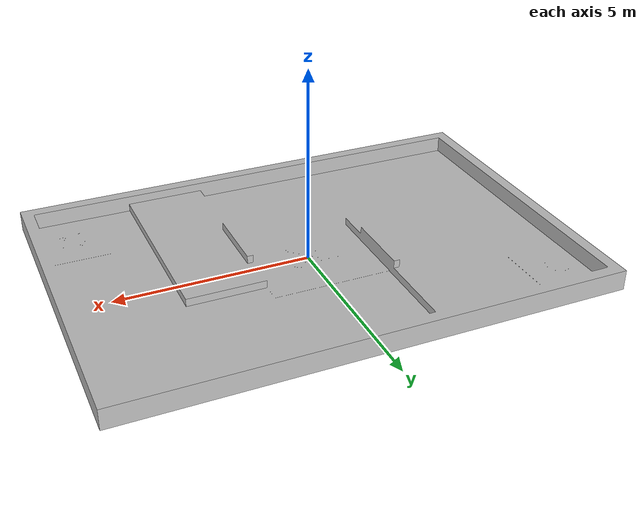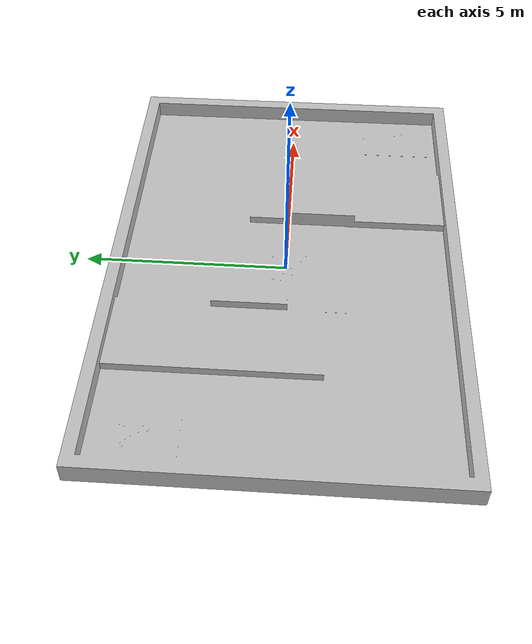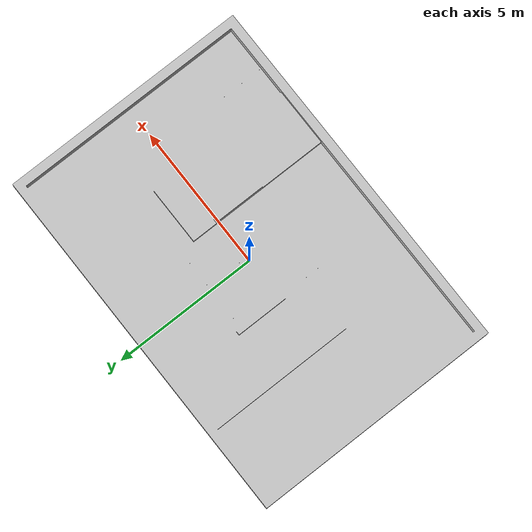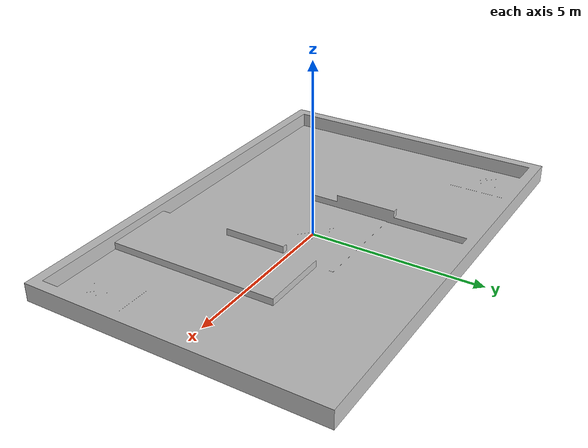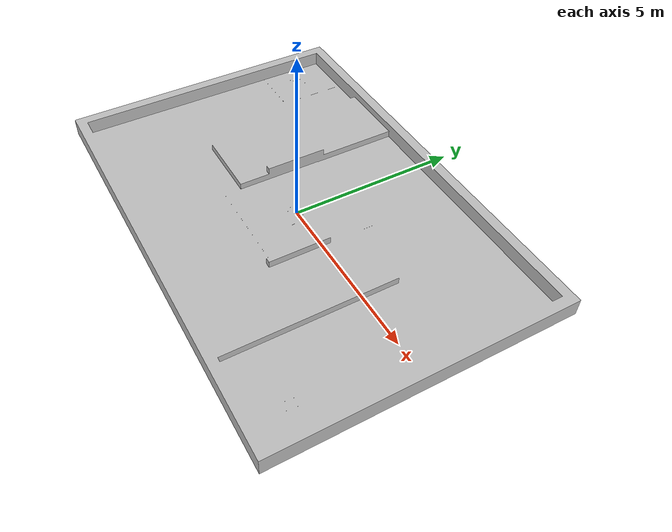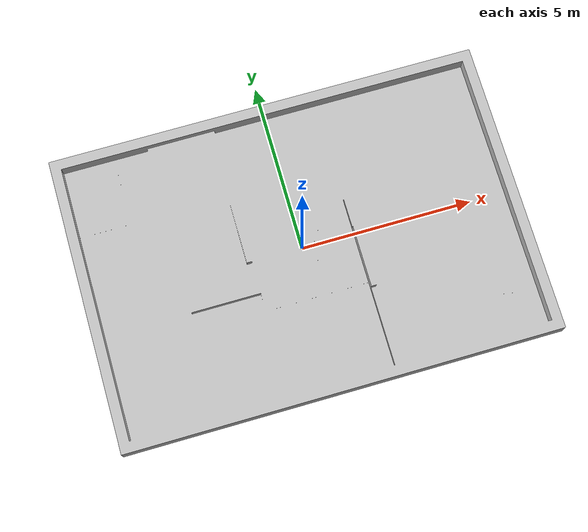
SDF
<?xml version="1.0" ?>

<sdf version="1.5">
    <world name="default">
        <!-- Target real time factor is the product of max_step_size and real_time_update_rate -->
        <!-- Negative real_time_update_rate means that Gazebo will run as fast as possible -->
        <physics type="ode">
            <max_step_size>0.001</max_step_size>
            <real_time_update_rate>1000</real_time_update_rate>
        </physics>

        <light name='sun' type='directional'>
            <cast_shadows>1</cast_shadows>
            <pose>0 0 10 0 -0 0</pose>
            <diffuse>0.8 0.8 0.8 1</diffuse>
            <specular>0.2 0.2 0.2 1</specular>
            <attenuation>
                <range>1000</range>
                <constant>0.9</constant>
                <linear>0.01</linear>
                <quadratic>0.001</quadratic>
            </attenuation>
            <direction>-0.5 0.1 -0.9</direction>
        </light>

        <model name='rmul2026'>
            <static>1</static>
            <link name='rmul2026_link'>
                <pose>0 0 0.1 0 0 0</pose>
                <visual name='visual'>
                    <geometry>
                        <mesh>
                            <uri>model://rm_gazebo/worlds/place/RMUL2026.stl</uri>
                            <scale>1 1 1</scale>
                        </mesh>
                    </geometry>
                  <lighting>true</lighting>
                    <material>
                      <ambient>0.25 0.25 0.25 1</ambient>
                      <diffuse>0.75 0.75 0.75 1</diffuse>
                      <specular>0.1 0.1 0.1 1</specular>
                      <emissive>0 0 0 1</emissive>
                    </material>
                </visual>
                <collision name='collision'>
                    <geometry>
                        <mesh>
                            <uri>model://rm_gazebo/worlds/place/RMUL2026.stl</uri>
                            <scale>1 1 1</scale>
                        </mesh>
                    </geometry>
                    <max_contacts>10</max_contacts>
                    <surface>
                        <bounce/>
                        <friction>
                            <ode/>
                        </friction>
                        <contact>
                            <ode/>
                        </contact>
                    </surface>
                </collision>
                <velocity_decay>
                    <linear>0</linear>
                    <angular>0</angular>
                </velocity_decay>
                <self_collide>0</self_collide>
                <kinematic>0</kinematic>
                <gravity>1</gravity>
            </link>
            <static>1</static>
        </model>
    </world>
</sdf>
